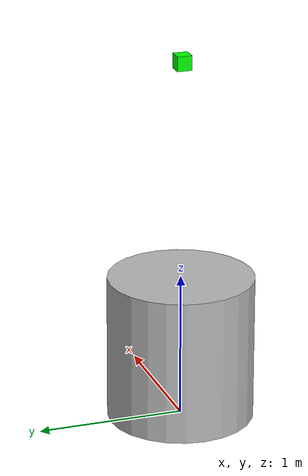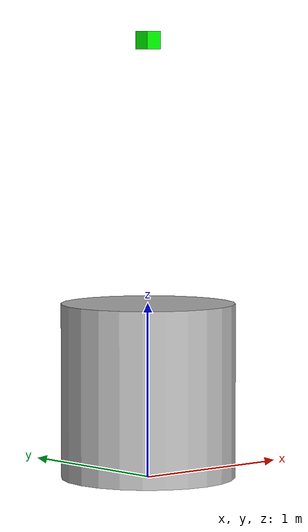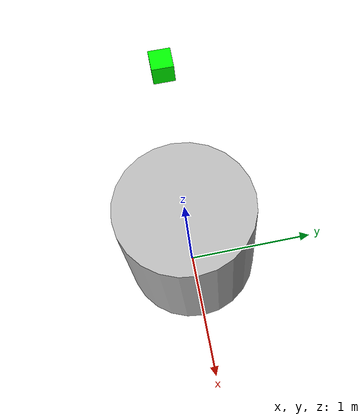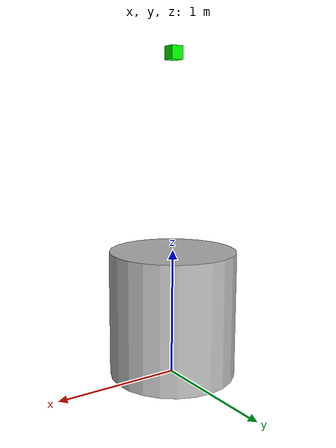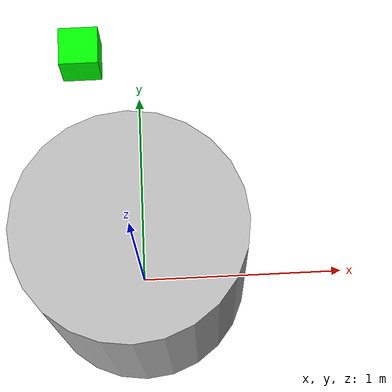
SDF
<?xml version="1.0" ?>
<sdf version="1.4">

  <model name="outerbarrel">
    <pose>0 0 0.5 0 0 0</pose>
    <static>true</static>
    <link name="link_outerbarrel">
      <pose>0.0 0 0 0 0 0</pose>
      <collision name="collision_outerbarrel">
        <geometry>
          <cylinder>
            <radius>0.5</radius>
            <length>1.0</length>
          </cylinder>
        </geometry>
      </collision>
      <visual name="visual_outerbarrel">
        <material>
        </material>
        <geometry>
          <cylinder>
            <radius>0.5</radius>
            <length>1.0</length>
          </cylinder>
        </geometry>
      </visual>
    </link>
    <model name="innderbarrel">
      <pose>0 0 0 0 0 0</pose>
    <static>true</static>
    <link name="link_innerbarrel">
      <inertial>
        <mass>1.0</mass>
        <inertia>
          <!-- inertias are tricky to compute -->
          <!-- http://gazebosim.org/tutorials?tut=inertia&cat=build_robot -->
          <ixx>0.083</ixx> <!-- for a box: ixx = 0.083 * mass * (y*y + z*z) -->
          <ixy>0.0</ixy> <!-- for a box: ixy = 0 -->
          <ixz>0.0</ixz> <!-- for a box: ixz = 0 -->
          <iyy>0.083</iyy> <!-- for a box: iyy = 0.083 * mass * (x*x + z*z) -->
          <iyz>0.0</iyz> <!-- for a box: iyz = 0 -->
          <izz>0.083</izz> <!-- for a box: izz = 0.083 * mass * (x*x + y*y) -->
        </inertia>
      </inertial>
      <collision name="collision_innerbarrel">
        <pose> 0 0 0 0 0 0</pose>
        <geometry>
          <cylinder>
            <radius>0.35</radius>
            <length>0.9</length>
          </cylinder>
        </geometry>
      </collision>
      <visual name="visual_innerbarrel">
        <pose> 0 0 0.0 0 0 0</pose>
        <geometry>
          <cylinder>
            <radius>0.35</radius>
            <length>0.9</length>
          </cylinder>
        </geometry>
        <material>
          <ambient>1.0 0 0 1.0</ambient>
          <diffuse>1.0 0 0 1.0</diffuse>
        </material>
      </visual>
    </link>
    <model name="radiation_source">
      <pose>0 0 0 0 0 0</pose>
      <static>true</static>
      <link name="link_radiation_source">
        <pose>0.0 0 0 0 0 0</pose>
        <visual name="visual_radiation_source_0">
          <pose> 0 0 0.0 0 0 0</pose>
          <geometry>
            <box>
              <size>0.1 0.1 0.1</size>
            </box>
          </geometry>
          <material>
            <ambient>1 0.0  0 1.0</ambient>
            <diffuse>1 0.0  0 1.0</diffuse>
          </material>
        </visual>
        <visual name="visual_radiation_source_1">
          <pose> 0 0 2.0 0 0 0</pose>
          <geometry>
            <box>
              <size>0.1 0.1 0.1</size>
            </box>
          </geometry>
          <material>
            <ambient>0 1.0  0 1.0</ambient>
            <diffuse>0 1.0  0 1.0</diffuse>
          </material>
        </visual>
        <sensor name="radiation_source" type="radiation_source">
          <always_on> 1 </always_on>
          <update_rate> 1.0 </update_rate>
          <topic>source_5/gamma</topic>
          <plugin name="radiation_source_plugin" filename="libradiation_source_plugin.so" />

        </sensor>
      </link>
	</model>
    </model>
  </model>

</sdf>
